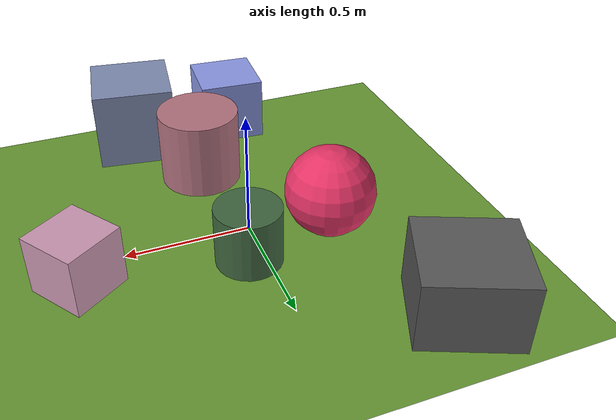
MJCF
<mujoco>
   <asset>
<texture type="skybox" builtin="gradient" rgb1="0.7 0.5 0.6" rgb2="0.5 0.6 0.8" width="500" height="500"/>
<texture name="checker_0" builtin="checker" rgb1="0.3 0.1 0.3" rgb2="0.2 0.7 0.2" width="500" height="500"/>
<texture name="checker_1" builtin="checker" rgb1="0.2 0.6 0.9" rgb2="0.9 0.6 0.9" width="500" height="500"/>
<texture name="flat_2" builtin="flat" rgb1="0.8 0.6 0.7" rgb2="0.8 0.6 0.7"  width="500" height="500"/>
<texture name="checker_3" builtin="checker" rgb1="0.1 0.5 0.7" rgb2="0.9 0.6 0.7" width="500" height="500"/>
<texture name="gradient_4" builtin="gradient" rgb1="0.8 0.8 0.1" rgb2="0.6 0.1 0.9" width="500" height="500"/>
<texture name="gradient_5" builtin="gradient" rgb1="0.5 0.1 0.6" rgb2="0.2 0.6 0.1" width="500" height="500"/>
<texture name="checker_6" builtin="checker" rgb1="0.9 0.4 0.0" rgb2="0.9 0.0 0.8" width="500" height="500"/><material name="checker_0_mat" reflectance="0.13797649253197475" texrepeat="9 9" texture="checker_0" texuniform="false" />
<material name="checker_1_mat" reflectance="0.15268975553936992" texrepeat="5 5" texture="checker_1" texuniform="false" />
<material name="flat_2_mat" reflectance="0.8400375112408801" texture="flat_2" texuniform="true"/>
<material name="checker_3_mat" reflectance="0.8413258543143801" texrepeat="3 3" texture="checker_3" texuniform="false" />
<material name="gradient_4_mat" reflectance="0.29060576555573747" texture="gradient_4" texuniform="true"/>
<material name="gradient_5_mat" reflectance="0.5360844118946161" texture="gradient_5" texuniform="true"/>
<material name="checker_6_mat" reflectance="0.5736098682147414" texrepeat="9 9" texture="checker_6" texuniform="false" />
   </asset>

   <worldbody>
     <geom type="plane" size="1 1 0.1" rgba="0.4 0.6 0.2 1" />
<light pos="-0.6323340553204113 0.09057014745388936 2" dir="0 0 -1" cutoff="90" diffuse="1 1 1" specular="1 1 1"/>
<light pos="-0.846390038940873 -0.5392551687344331 2" dir="0 0 -1" cutoff="90" diffuse="1 1 1" specular="1 1 1"/>
<geom type="cylinder" pos="0.06 0.18 0.12" size="0.13 0.12 0.12" material="checker_0_mat" euler="0 0 60" />
<geom type="box" pos="-0.17 -0.82 0.14" size="0.14 0.14 0.14" material="checker_1_mat" euler="0 0 86" />
<geom type="box" pos="0.68 0.1 0.12" size="0.12 0.12 0.12" material="flat_2_mat" euler="0 0 35" />
<geom type="box" pos="0.28 -0.8 0.17" size="0.17 0.17 0.17" material="checker_3_mat" euler="0 0 82" />
<geom type="cylinder" pos="0.07 -0.44 0.16" size="0.17 0.16 0.16" material="gradient_4_mat" euler="0 0 1" />
<geom type="box" pos="-0.53 0.72 0.14" size="0.18 0.19 0.14" material="gradient_5_mat" euler="0 0 67" />
<geom type="sphere" pos="-0.3 0.11 0.18" size="0.18 0.18 0.18" material="checker_6_mat" euler="0 0 77" /><camera euler="60 0 180" fovy="60" name="camera1" pos="-0.2 -1.5 1"></camera>   </worldbody>
   <visual>
      <headlight diffuse="0.7 0.7 0.7"/>
   </visual>
</mujoco>
